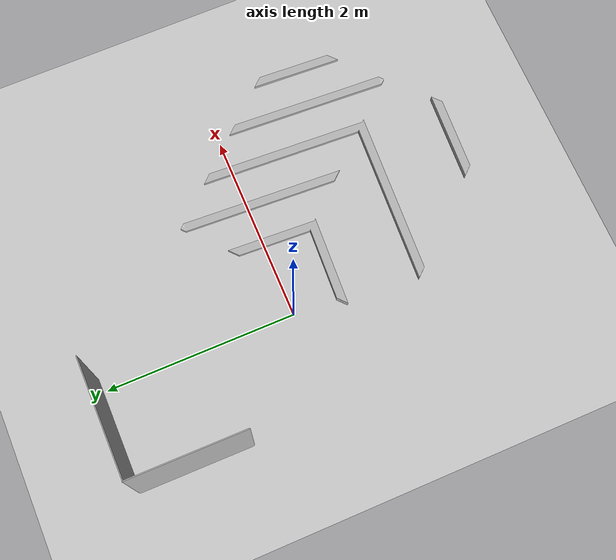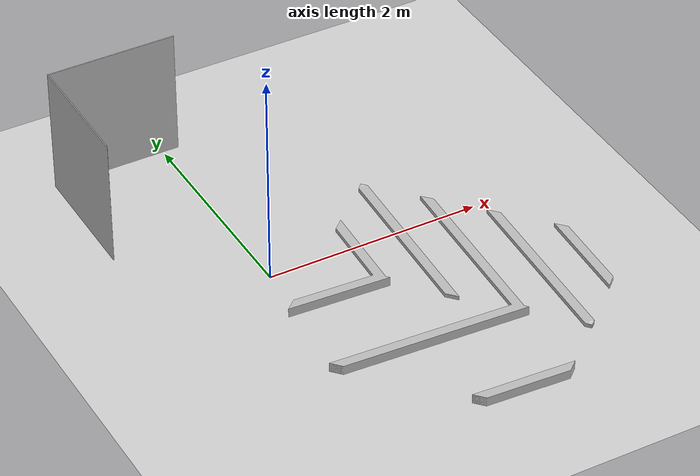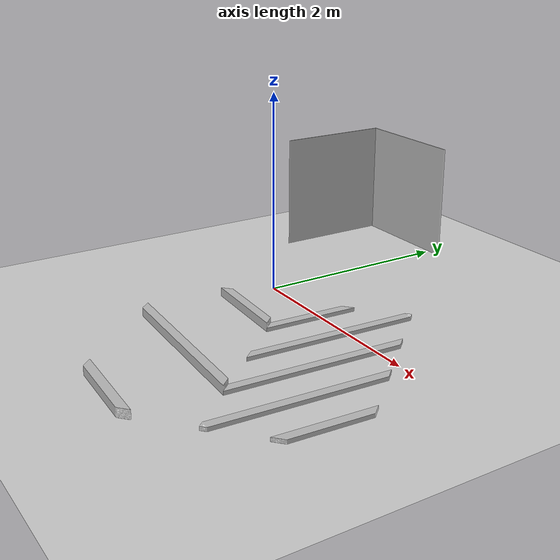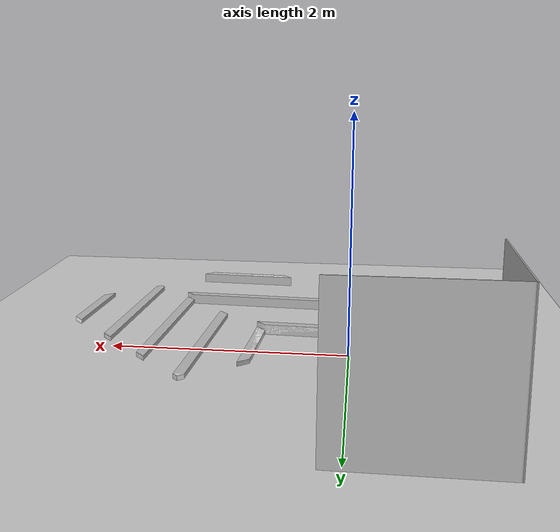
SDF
<sdf version="1.6">
 <world name="default">
  <light name="sun" type="directional">
   <pose>0 0 10 0 -0 0</pose>
   <diffuse>0.8 0.8 0.8 1</diffuse>
   <specular>0.2 0.2 0.2 1</specular>
   <attenuation>
    <range>1000</range>
    <constant>0.9</constant>
    <linear>0.01</linear>
    <quadratic>0.001</quadratic>
   </attenuation>
   <direction>-0.5 0.1 -0.9</direction>
  </light>
  <model name="ground_plane">
   <static>1</static>
   <link name="link">
    <collision name="collision">
     <geometry><plane><normal>0 0 1</normal><size>100 100</size></plane></geometry>
     <surface>
      <contact><collide_bitmask>65535</collide_bitmask></contact>
      <friction><ode><mu>100</mu><mu2>50</mu2></ode></friction>
     </surface>
    </collision>
    <visual name="visual">
     <cast_shadows>0</cast_shadows>
     <geometry><plane><normal>0 0 1</normal><size>100 100</size></plane></geometry>
     <material>
      <script><uri>file://media/materials/scripts/gazebo.material</uri><name>Gazebo/Grey</name></script>
     </material>
    </visual>
   </link>
  </model>
  <gravity>0 0 -9.8</gravity>
  <magnetic_field>6e-06 2.3e-05 -4.2e-05</magnetic_field>
  <atmosphere type="adiabatic"/>
  <physics name="default_physics" default="0" type="ode">
   <max_step_size>0.001</max_step_size>
   <real_time_factor>1</real_time_factor>
   <real_time_update_rate>1000</real_time_update_rate>
  </physics>
  <scene><ambient>0.4 0.4 0.4 1</ambient><background>0.7 0.7 0.7 1</background><shadows>1</shadows></scene>
  <audio><device>default</device></audio>
  <spherical_coordinates>
   <surface_model>EARTH_WGS84</surface_model>
   <latitude_deg>0</latitude_deg>
   <longitude_deg>0</longitude_deg>
   <elevation>0</elevation>
   <heading_deg>0</heading_deg>
  </spherical_coordinates>
  <model name="wood_slats">
   <static>1</static>
   <link name="link">
    <collision name="collision">
     <geometry><mesh><uri>model://drc_practice_wood_slats/meshes/wood_slats.dae</uri></mesh></geometry>
     <surface>
      <bounce><restitution_coefficient>0.01</restitution_coefficient><threshold>5</threshold></bounce>
      <friction><ode><mu>5</mu><mu2>5</mu2></ode></friction>
      <contact>
       <ode>
        <soft_cfm>0.001</soft_cfm>
        <kp>10000</kp>
        <kd>1000</kd>
        <max_vel>0.01</max_vel>
        <min_depth>0.001</min_depth>
       </ode>
      </contact>
     </surface>
    </collision>
    <visual name="visual">
     <geometry><mesh><uri>model://drc_practice_wood_slats/meshes/wood_slats.dae</uri></mesh></geometry>
    </visual>
   </link>
   <pose>1.28376 0.724516 0 0 -0 -2.40685</pose>
  </model>
  <model name="nist_maze_wall_120">
   <static>1</static>
   <link name="nist_maze_wall_120_link">
    <collision name="collision">
     <geometry>
      <mesh><uri>model://nist_maze_wall_120/meshes/nist_maze_wall_120.dae</uri><scale>1 1 1</scale></mesh>
     </geometry>
    </collision>
    <visual name="visual">
     <geometry>
      <mesh><uri>model://nist_maze_wall_120/meshes/nist_maze_wall_120.dae</uri><scale>1 1 1</scale></mesh>
     </geometry>
    </visual>
   </link>
   <pose>-0.44565 1.44654 0 0 -0 0</pose>
  </model>
  <model name="nist_maze_wall_120_0">
   <static>1</static>
   <link name="nist_maze_wall_120_link">
    <collision name="collision">
     <geometry>
      <mesh><uri>model://nist_maze_wall_120/meshes/nist_maze_wall_120.dae</uri><scale>1 1 1</scale></mesh>
     </geometry>
    </collision>
    <visual name="visual">
     <geometry>
      <mesh><uri>model://nist_maze_wall_120/meshes/nist_maze_wall_120.dae</uri><scale>1 1 1</scale></mesh>
     </geometry>
    </visual>
   </link>
   <pose>-0.452318 1.45381 0 0 -0 1.56493</pose>
  </model>
 </world>
</sdf>
